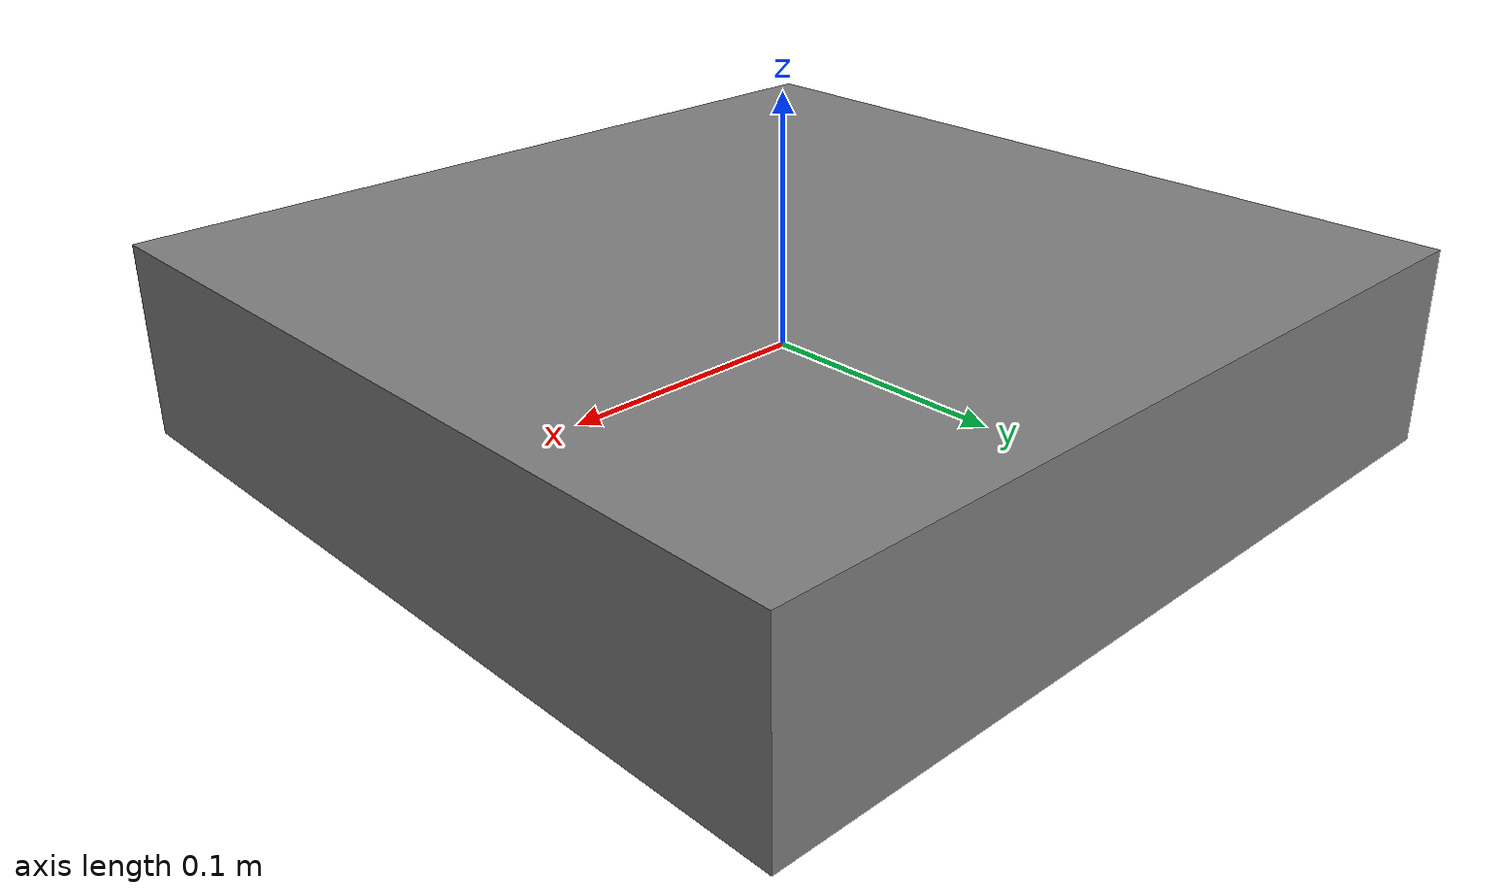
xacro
<?xml version="1.0"?>
<robot xmlns:xacro="http://www.ros.org/wiki/xacro" name="dondron">

  <link name="base_link">
    <visual>
      <geometry>
        <box size="0.35 0.35 0.08"/>
      </geometry>
      <material name="grey">
        <color rgba="0.5 0.5 0.5 1.0"/>
      </material>
    </visual>
    <collision>
      <geometry>
        <box size="0.35 0.35 0.08"/>
      </geometry>
    </collision>
    <inertial>
      <mass value="1.4"/>
      <inertia ixx="0.01" ixy="0" ixz="0" iyy="0.01" iyz="0" izz="0.02"/>
    </inertial>
  </link>

  <link name="camera_link"/>

  <joint name="camera_joint" type="fixed">
    <parent link="base_link"/>
    <child link="camera_link"/>
    <origin xyz="0.15 0 0" rpy="0 0 0"/>
  </joint>

  <!-- REP-103 optical frame: Z forward, X right, Y down -->
  <link name="camera_optical_frame"/>

  <joint name="camera_optical_joint" type="fixed">
    <parent link="camera_link"/>
    <child link="camera_optical_frame"/>
    <origin xyz="0 0 0" rpy="${-pi/2} 0 ${-pi/2}"/>
  </joint>

</robot>
